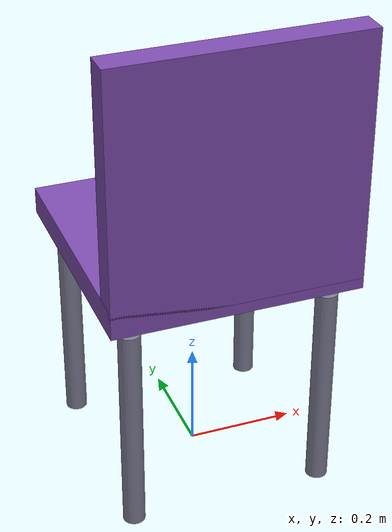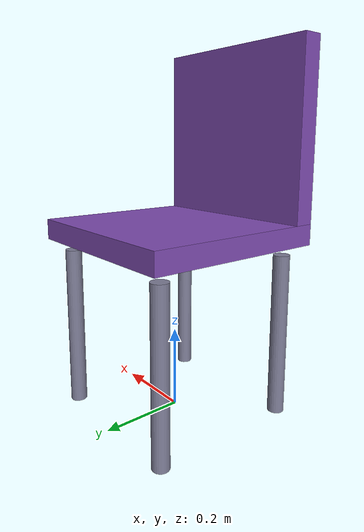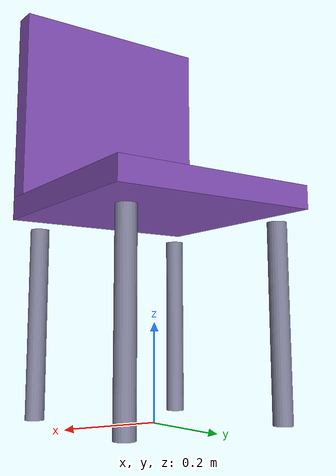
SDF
<?xml version='1.0'?>
<sdf version='1.6'>
  <model name='chair'>
    <static>true</static>
    <link name='chair_link'>
      <!-- seat -->
      <collision name='col_seat'>
        <geometry><box><size>0.45 0.45 0.05</size></box></geometry>
        <pose>0 0 0.45 0 0 0</pose>
      </collision>
      <visual name='vis_seat'>
        <geometry><box><size>0.45 0.45 0.05</size></box></geometry>
        <pose>0 0 0.45 0 0 0</pose>
        <material>
          <ambient>0.4 0.2 0.6 1</ambient>
          <diffuse>0.5 0.3 0.7 1</diffuse>
          <specular>0.1 0.1 0.1 1</specular>
        </material>
      </visual>
      <!-- backrest -->
      <collision name='col_back'>
        <geometry><box><size>0.45 0.05 0.45</size></box></geometry>
        <pose>0 -0.2 0.67 0 0 0</pose>
      </collision>
      <visual name='vis_back'>
        <geometry><box><size>0.45 0.05 0.45</size></box></geometry>
        <pose>0 -0.2 0.67 0 0 0</pose>
        <material>
          <ambient>0.4 0.2 0.6 1</ambient>
          <diffuse>0.5 0.3 0.7 1</diffuse>
          <specular>0.1 0.1 0.1 1</specular>
        </material>
      </visual>
      <collision name='col_leg1'>
        <geometry><cylinder><radius>0.02</radius><length>0.4</length></cylinder></geometry>
        <pose>0.18 0.18 0.2 0 0 0</pose>
      </collision>
      <visual name='vis_leg1'>
        <geometry><cylinder><radius>0.02</radius><length>0.4</length></cylinder></geometry>
        <pose>0.18 0.18 0.2 0 0 0</pose>
        <material>
          <ambient>0.6 0.6 0.7 1</ambient>
          <diffuse>0.5 0.5 0.6 1</diffuse>
          <specular>0.8 0.8 0.9 1</specular>
        </material>
      </visual>
      <collision name='col_leg2'>
        <geometry><cylinder><radius>0.02</radius><length>0.4</length></cylinder></geometry>
        <pose>-0.18 0.18 0.2 0 0 0</pose>
      </collision>
      <visual name='vis_leg2'>
        <geometry><cylinder><radius>0.02</radius><length>0.4</length></cylinder></geometry>
        <pose>-0.18 0.18 0.2 0 0 0</pose>
        <material>
          <ambient>0.6 0.6 0.7 1</ambient>
          <diffuse>0.5 0.5 0.6 1</diffuse>
          <specular>0.8 0.8 0.9 1</specular>
        </material>
      </visual>
      <collision name='col_leg3'>
        <geometry><cylinder><radius>0.02</radius><length>0.4</length></cylinder></geometry>
        <pose>0.18 -0.18 0.2 0 0 0</pose>
      </collision>
      <visual name='vis_leg3'>
        <geometry><cylinder><radius>0.02</radius><length>0.4</length></cylinder></geometry>
        <pose>0.18 -0.18 0.2 0 0 0</pose>
        <material>
          <ambient>0.6 0.6 0.7 1</ambient>
          <diffuse>0.5 0.5 0.6 1</diffuse>
          <specular>0.8 0.8 0.9 1</specular>
        </material>
      </visual>
      <collision name='col_leg4'>
        <geometry><cylinder><radius>0.02</radius><length>0.4</length></cylinder></geometry>
        <pose>-0.18 -0.18 0.2 0 0 0</pose>
      </collision>
      <visual name='vis_leg4'>
        <geometry><cylinder><radius>0.02</radius><length>0.4</length></cylinder></geometry>
        <pose>-0.18 -0.18 0.2 0 0 0</pose>
        <material>
          <ambient>0.6 0.6 0.7 1</ambient>
          <diffuse>0.5 0.5 0.6 1</diffuse>
          <specular>0.8 0.8 0.9 1</specular>
        </material>
      </visual>
    </link>
  </model>
</sdf>
